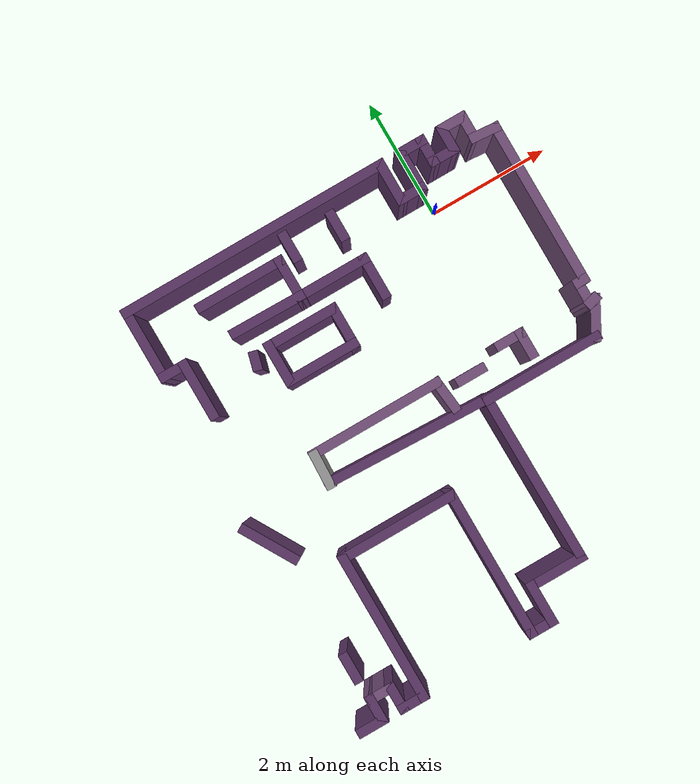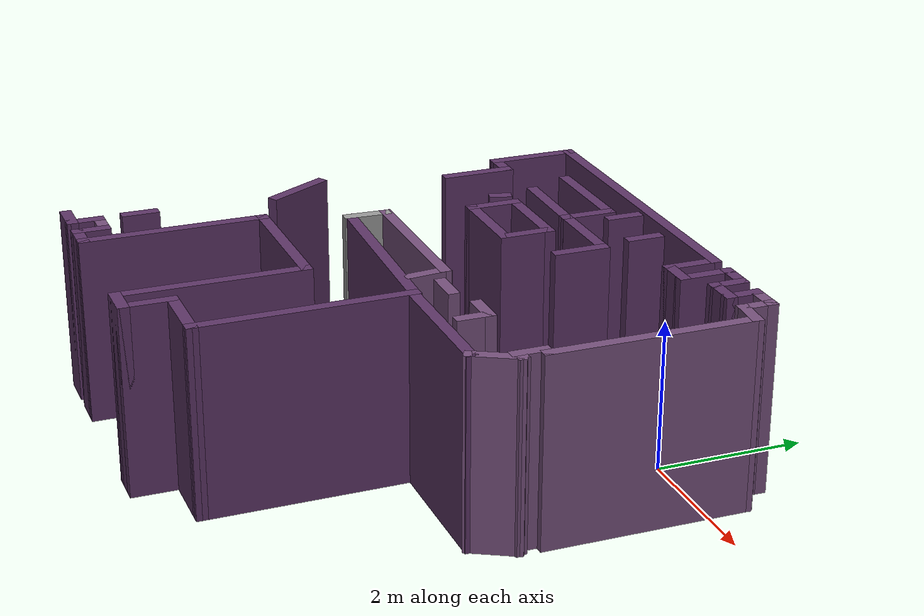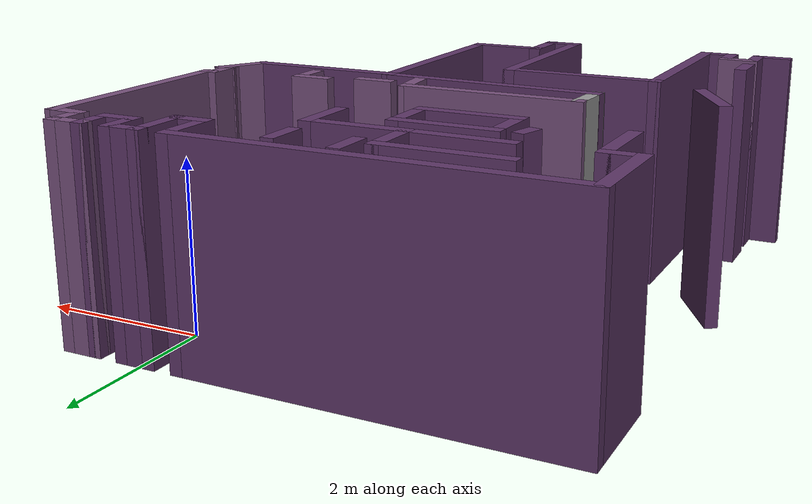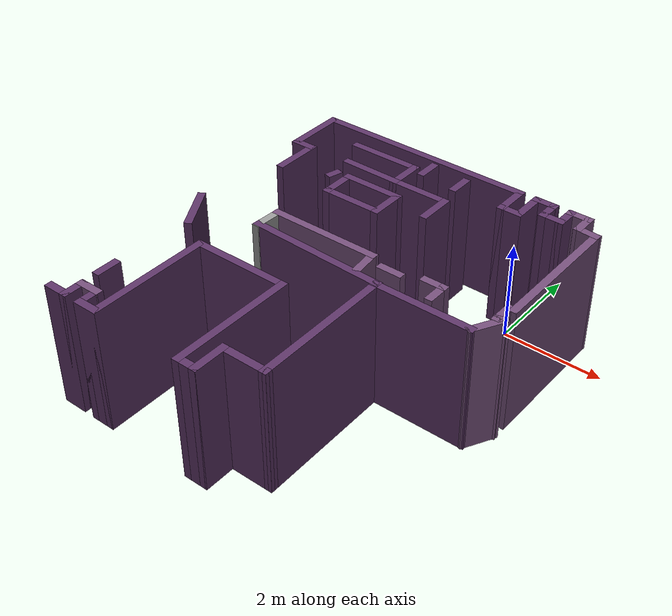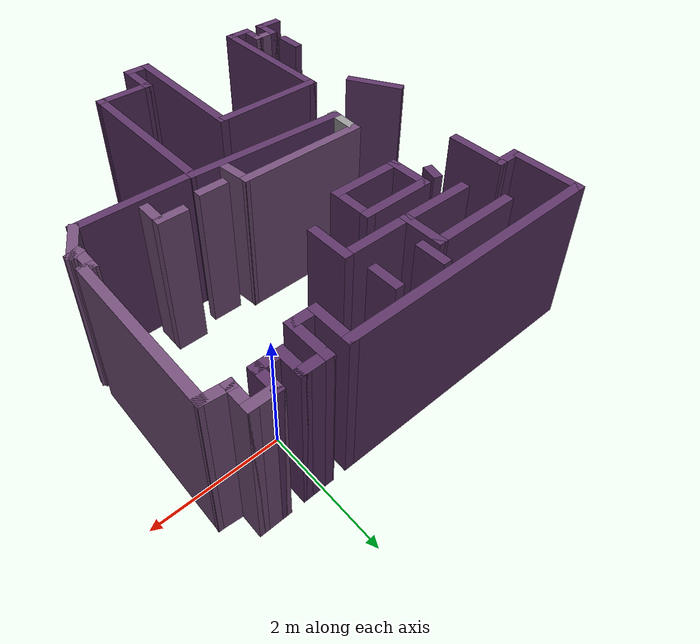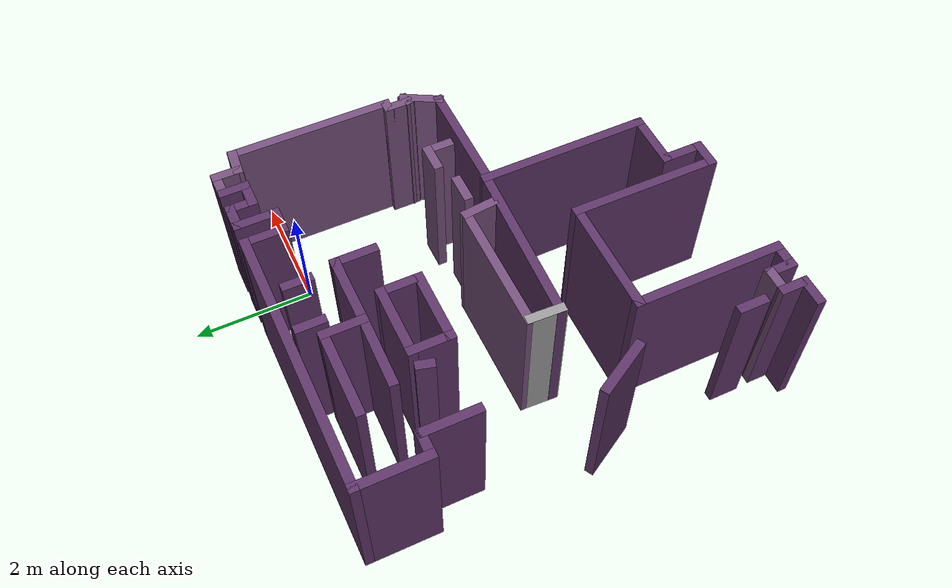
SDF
<sdf version="1.6">
 <model name="map_35">
  <pose>-6.03093 -2.69462 0 0 -0 0</pose>
  <link name="Wall_0">
   <collision name="Wall_0_Collision">
    <geometry><box><size>4.5 0.15 2.5</size></box></geometry>
    <pose>0 0 1.25 0 -0 0</pose>
   </collision>
   <visual name="Wall_0_Visual">
    <pose>0 0 1.25 0 -0 0</pose>
    <geometry><box><size>4.5 0.15 2.5</size></box></geometry>
    <material>
     <script><uri>file://media/materials/scripts/gazebo.material</uri><name>Gazebo/Grey</name></script>
     <ambient>0.360784 0.207843 0.4 1</ambient>
    </material>
    <meta><layer>0</layer></meta>
   </visual>
   <pose>3.38761 3.57249 0 0 -0 3.14159</pose>
  </link>
  <link name="Wall_1">
   <collision name="Wall_1_Collision">
    <geometry><box><size>1.25 0.15 2.5</size></box></geometry>
    <pose>0 0 1.25 0 -0 0</pose>
   </collision>
   <visual name="Wall_1_Visual">
    <pose>0 0 1.25 0 -0 0</pose>
    <geometry><box><size>1.25 0.15 2.5</size></box></geometry>
    <material>
     <script><uri>file://media/materials/scripts/gazebo.material</uri><name>Gazebo/Grey</name></script>
     <ambient>0.360784 0.207843 0.4 1</ambient>
    </material>
    <meta><layer>0</layer></meta>
   </visual>
   <pose>1.21261 3.02249 0 0 -0 -1.5708</pose>
  </link>
  <link name="Wall_103">
   <collision name="Wall_103_Collision">
    <geometry><box><size>2 0.15 2.5</size></box></geometry>
    <pose>0 0 1.25 0 -0 0</pose>
   </collision>
   <visual name="Wall_103_Visual">
    <pose>0 0 1.25 0 -0 0</pose>
    <geometry><box><size>2 0.15 2.5</size></box></geometry>
    <material>
     <script><uri>file://media/materials/scripts/gazebo.material</uri><name>Gazebo/Grey</name></script>
     <ambient>0.360784 0.207843 0.4 1</ambient>
    </material>
    <meta><layer>0</layer></meta>
   </visual>
   <pose>6.1106 -0.231333 0 0 -0 0</pose>
  </link>
  <link name="Wall_104">
   <collision name="Wall_104_Collision">
    <geometry><box><size>0.717797 0.15 2.5</size></box></geometry>
    <pose>0 0 1.25 0 -0 0</pose>
   </collision>
   <visual name="Wall_104_Visual">
    <pose>0 0 1.25 0 -0 0</pose>
    <geometry><box><size>0.717797 0.15 2.5</size></box></geometry>
    <material>
     <script><uri>file://media/materials/scripts/gazebo.material</uri><name>Gazebo/Grey</name></script>
     <ambient>0.458824 0.313726 0.482353 1</ambient>
    </material>
    <meta><layer>0</layer></meta>
   </visual>
   <pose>7.17066 0.018383 0 0 -0 1.07501</pose>
  </link>
  <link name="Wall_105">
   <collision name="Wall_105_Collision">
    <geometry><box><size>0.25 0.15 2.5</size></box></geometry>
    <pose>0 0 1.25 0 -0 0</pose>
   </collision>
   <visual name="Wall_105_Visual">
    <pose>0 0 1.25 0 -0 0</pose>
    <geometry><box><size>0.25 0.15 2.5</size></box></geometry>
    <material>
     <script><uri>file://media/materials/scripts/gazebo.material</uri><name>Gazebo/Grey</name></script>
     <ambient>0.458824 0.313726 0.482353 1</ambient>
    </material>
    <meta><layer>0</layer></meta>
   </visual>
   <pose>7.25742 0.255158 0 0 -0 -2.87979</pose>
  </link>
  <link name="Wall_106">
   <collision name="Wall_106_Collision">
    <geometry><box><size>0.5 0.15 2.5</size></box></geometry>
    <pose>0 0 1.25 0 -0 0</pose>
   </collision>
   <visual name="Wall_106_Visual">
    <pose>0 0 1.25 0 -0 0</pose>
    <geometry><box><size>0.5 0.15 2.5</size></box></geometry>
    <material>
     <script><uri>file://media/materials/scripts/gazebo.material</uri><name>Gazebo/Grey</name></script>
     <ambient>0.458824 0.313726 0.482353 1</ambient>
    </material>
    <meta><layer>0</layer></meta>
   </visual>
   <pose>7.20912 0.417217 0 0 -0 1.5708</pose>
  </link>
  <link name="Wall_107">
   <collision name="Wall_107_Collision">
    <geometry><box><size>0.25 0.15 2.5</size></box></geometry>
    <pose>0 0 1.25 0 -0 0</pose>
   </collision>
   <visual name="Wall_107_Visual">
    <pose>0 0 1.25 0 -0 0</pose>
    <geometry><box><size>0.25 0.15 2.5</size></box></geometry>
    <material>
     <script><uri>file://media/materials/scripts/gazebo.material</uri><name>Gazebo/Grey</name></script>
     <ambient>0.458824 0.313726 0.482353 1</ambient>
    </material>
    <meta><layer>0</layer></meta>
   </visual>
   <pose>7.25912 0.592217 0 0 -0 0</pose>
  </link>
  <link name="Wall_108">
   <collision name="Wall_108_Collision">
    <geometry><box><size>2.75 0.15 2.5</size></box></geometry>
    <pose>0 0 1.25 0 -0 0</pose>
   </collision>
   <visual name="Wall_108_Visual">
    <pose>0 0 1.25 0 -0 0</pose>
    <geometry><box><size>2.75 0.15 2.5</size></box></geometry>
    <material>
     <script><uri>file://media/materials/scripts/gazebo.material</uri><name>Gazebo/Grey</name></script>
     <ambient>0.458824 0.313726 0.482353 1</ambient>
    </material>
    <meta><layer>0</layer></meta>
   </visual>
   <pose>7.30912 1.89222 0 0 -0 1.5708</pose>
  </link>
  <link name="Wall_115">
   <collision name="Wall_115_Collision">
    <geometry><box><size>0.75 0.15 2.5</size></box></geometry>
    <pose>0 0 1.25 0 -0 0</pose>
   </collision>
   <visual name="Wall_115_Visual">
    <pose>0 0 1.25 0 -0 0</pose>
    <geometry><box><size>0.75 0.15 2.5</size></box></geometry>
    <material>
     <script><uri>file://media/materials/scripts/gazebo.material</uri><name>Gazebo/Grey</name></script>
     <ambient>0.360784 0.207843 0.4 1</ambient>
    </material>
    <meta><layer>0</layer></meta>
   </visual>
   <pose>5.56261 3.27249 0 0 -0 -1.5708</pose>
  </link>
  <link name="Wall_116">
   <collision name="Wall_116_Collision">
    <geometry><box><size>0.5 0.15 2.5</size></box></geometry>
    <pose>0 0 1.25 0 -0 0</pose>
   </collision>
   <visual name="Wall_116_Visual">
    <pose>0 0 1.25 0 -0 0</pose>
    <geometry><box><size>0.5 0.15 2.5</size></box></geometry>
    <material>
     <script><uri>file://media/materials/scripts/gazebo.material</uri><name>Gazebo/Grey</name></script>
     <ambient>0.360784 0.207843 0.4 1</ambient>
    </material>
    <meta><layer>0</layer></meta>
   </visual>
   <pose>5.73761 2.97249 0 0 -0 0</pose>
  </link>
  <link name="Wall_119">
   <collision name="Wall_119_Collision">
    <geometry><box><size>0.75 0.15 2.5</size></box></geometry>
    <pose>0 0 1.25 0 -0 0</pose>
   </collision>
   <visual name="Wall_119_Visual">
    <pose>0 0 1.25 0 -0 0</pose>
    <geometry><box><size>0.75 0.15 2.5</size></box></geometry>
    <material>
     <script><uri>file://media/materials/scripts/gazebo.material</uri><name>Gazebo/Grey</name></script>
     <ambient>0.360784 0.207843 0.4 1</ambient>
    </material>
    <meta><layer>0</layer></meta>
   </visual>
   <pose>5.91261 3.27249 0 0 -0 1.5708</pose>
  </link>
  <link name="Wall_120">
   <collision name="Wall_120_Collision">
    <geometry><box><size>0.5 0.15 2.5</size></box></geometry>
    <pose>0 0 1.25 0 -0 0</pose>
   </collision>
   <visual name="Wall_120_Visual">
    <pose>0 0 1.25 0 -0 0</pose>
    <geometry><box><size>0.5 0.15 2.5</size></box></geometry>
    <material>
     <script><uri>file://media/materials/scripts/gazebo.material</uri><name>Gazebo/Grey</name></script>
     <ambient>0.360784 0.207843 0.4 1</ambient>
    </material>
    <meta><layer>0</layer></meta>
   </visual>
   <pose>6.08761 3.57249 0 0 -0 0</pose>
  </link>
  <link name="Wall_121">
   <collision name="Wall_121_Collision">
    <geometry><box><size>0.5 0.15 2.5</size></box></geometry>
    <pose>0 0 1.25 0 -0 0</pose>
   </collision>
   <visual name="Wall_121_Visual">
    <pose>0 0 1.25 0 -0 0</pose>
    <geometry><box><size>0.5 0.15 2.5</size></box></geometry>
    <material>
     <script><uri>file://media/materials/scripts/gazebo.material</uri><name>Gazebo/Grey</name></script>
     <ambient>0.360784 0.207843 0.4 1</ambient>
    </material>
    <meta><layer>0</layer></meta>
   </visual>
   <pose>6.26261 3.39749 0 0 -0 -1.5708</pose>
  </link>
  <link name="Wall_122">
   <collision name="Wall_122_Collision">
    <geometry><box><size>0.5 0.15 2.5</size></box></geometry>
    <pose>0 0 1.25 0 -0 0</pose>
   </collision>
   <visual name="Wall_122_Visual">
    <pose>0 0 1.25 0 -0 0</pose>
    <geometry><box><size>0.5 0.15 2.5</size></box></geometry>
    <material>
     <script><uri>file://media/materials/scripts/gazebo.material</uri><name>Gazebo/Grey</name></script>
     <ambient>0.360784 0.207843 0.4 1</ambient>
    </material>
    <meta><layer>0</layer></meta>
   </visual>
   <pose>6.43761 3.22249 0 0 -0 0</pose>
  </link>
  <link name="Wall_123">
   <collision name="Wall_123_Collision">
    <geometry><box><size>0.5 0.15 2.5</size></box></geometry>
    <pose>0 0 1.25 0 -0 0</pose>
   </collision>
   <visual name="Wall_123_Visual">
    <pose>0 0 1.25 0 -0 0</pose>
    <geometry><box><size>0.5 0.15 2.5</size></box></geometry>
    <material>
     <script><uri>file://media/materials/scripts/gazebo.material</uri><name>Gazebo/Grey</name></script>
     <ambient>0.360784 0.207843 0.4 1</ambient>
    </material>
    <meta><layer>0</layer></meta>
   </visual>
   <pose>6.61261 3.39749 0 0 -0 1.5708</pose>
  </link>
  <link name="Wall_124">
   <collision name="Wall_124_Collision">
    <geometry><box><size>0.5 0.15 2.5</size></box></geometry>
    <pose>0 0 1.25 0 -0 0</pose>
   </collision>
   <visual name="Wall_124_Visual">
    <pose>0 0 1.25 0 -0 0</pose>
    <geometry><box><size>0.5 0.15 2.5</size></box></geometry>
    <material>
     <script><uri>file://media/materials/scripts/gazebo.material</uri><name>Gazebo/Grey</name></script>
     <ambient>0.458824 0.313726 0.482353 1</ambient>
    </material>
    <meta><layer>0</layer></meta>
   </visual>
   <pose>6.78761 3.57249 0 0 -0 0</pose>
  </link>
  <link name="Wall_125">
   <collision name="Wall_125_Collision">
    <geometry><box><size>0.5 0.15 2.5</size></box></geometry>
    <pose>0 0 1.25 0 -0 0</pose>
   </collision>
   <visual name="Wall_125_Visual">
    <pose>0 0 1.25 0 -0 0</pose>
    <geometry><box><size>0.5 0.15 2.5</size></box></geometry>
    <material>
     <script><uri>file://media/materials/scripts/gazebo.material</uri><name>Gazebo/Grey</name></script>
     <ambient>0.458824 0.313726 0.482353 1</ambient>
    </material>
    <meta><layer>0</layer></meta>
   </visual>
   <pose>6.96261 3.39749 0 0 -0 -1.5708</pose>
  </link>
  <link name="Wall_126">
   <collision name="Wall_126_Collision">
    <geometry><box><size>0.497826 0.15 2.5</size></box></geometry>
    <pose>0 0 1.25 0 -0 0</pose>
   </collision>
   <visual name="Wall_126_Visual">
    <pose>0 0 1.25 0 -0 0</pose>
    <geometry><box><size>0.497826 0.15 2.5</size></box></geometry>
    <material>
     <script><uri>file://media/materials/scripts/gazebo.material</uri><name>Gazebo/Grey</name></script>
     <ambient>0.458824 0.313726 0.482353 1</ambient>
    </material>
    <meta><layer>0</layer></meta>
   </visual>
   <pose>7.13587 3.20735 0 0 -0 -0.087136</pose>
  </link>
  <link name="Wall_128">
   <collision name="Wall_128_Collision">
    <geometry><box><size>0.75 0.15 2.5</size></box></geometry>
    <pose>0 0 1.25 0 -0 0</pose>
   </collision>
   <visual name="Wall_128_Visual">
    <pose>0 0 1.25 0 -0 0</pose>
    <geometry><box><size>0.75 0.15 2.5</size></box></geometry>
    <material>
     <script><uri>file://media/materials/scripts/gazebo.material</uri><name>Gazebo/Grey</name></script>
     <ambient>0.360784 0.207843 0.4 1</ambient>
    </material>
    <meta><layer>0</layer></meta>
   </visual>
   <pose>2.78694 1.78408 0 0 -0 -1.5708</pose>
  </link>
  <link name="Wall_129">
   <collision name="Wall_129_Collision">
    <geometry><box><size>1.25 0.15 2.5</size></box></geometry>
    <pose>0 0 1.25 0 -0 0</pose>
   </collision>
   <visual name="Wall_129_Visual">
    <pose>0 0 1.25 0 -0 0</pose>
    <geometry><box><size>1.25 0.15 2.5</size></box></geometry>
    <material>
     <script><uri>file://media/materials/scripts/gazebo.material</uri><name>Gazebo/Grey</name></script>
     <ambient>0.360784 0.207843 0.4 1</ambient>
    </material>
    <meta><layer>0</layer></meta>
   </visual>
   <pose>3.33694 1.48408 0 0 -0 0</pose>
  </link>
  <link name="Wall_130">
   <collision name="Wall_130_Collision">
    <geometry><box><size>0.75 0.15 2.5</size></box></geometry>
    <pose>0 0 1.25 0 -0 0</pose>
   </collision>
   <visual name="Wall_130_Visual">
    <pose>0 0 1.25 0 -0 0</pose>
    <geometry><box><size>0.75 0.15 2.5</size></box></geometry>
    <material>
     <script><uri>file://media/materials/scripts/gazebo.material</uri><name>Gazebo/Grey</name></script>
     <ambient>0.360784 0.207843 0.4 1</ambient>
    </material>
    <meta><layer>0</layer></meta>
   </visual>
   <pose>3.88694 1.78408 0 0 -0 1.5708</pose>
  </link>
  <link name="Wall_131">
   <collision name="Wall_131_Collision">
    <geometry><box><size>1.25 0.15 2.5</size></box></geometry>
    <pose>0 0 1.25 0 -0 0</pose>
   </collision>
   <visual name="Wall_131_Visual">
    <pose>0 0 1.25 0 -0 0</pose>
    <geometry><box><size>1.25 0.15 2.5</size></box></geometry>
    <material>
     <script><uri>file://media/materials/scripts/gazebo.material</uri><name>Gazebo/Grey</name></script>
     <ambient>0.360784 0.207843 0.4 1</ambient>
    </material>
    <meta><layer>0</layer></meta>
   </visual>
   <pose>3.33694 2.08408 0 0 -0 3.14159</pose>
  </link>
  <link name="Wall_133">
   <collision name="Wall_133_Collision">
    <geometry><box><size>0.3 0.15 2.5</size></box></geometry>
    <pose>0 0 1.25 0 -0 0</pose>
   </collision>
   <visual name="Wall_133_Visual">
    <pose>0 0 1.25 0 -0 0</pose>
    <geometry><box><size>0.3 0.15 2.5</size></box></geometry>
    <material>
     <script><uri>file://media/materials/scripts/gazebo.material</uri><name>Gazebo/Grey</name></script>
     <ambient>0.360784 0.207843 0.4 1</ambient>
    </material>
    <meta><layer>0</layer></meta>
   </visual>
   <pose>2.50465 1.99562 0 0 -0 1.309</pose>
  </link>
  <link name="Wall_135">
   <collision name="Wall_135_Collision">
    <geometry><box><size>1.5 0.15 2.5</size></box></geometry>
    <pose>0 0 1.25 0 -0 0</pose>
   </collision>
   <visual name="Wall_135_Visual">
    <pose>0 0 1.25 0 -0 0</pose>
    <geometry><box><size>1.5 0.15 2.5</size></box></geometry>
    <material>
     <script><uri>file://media/materials/scripts/gazebo.material</uri><name>Gazebo/Grey</name></script>
     <ambient>0.360784 0.207843 0.4 1</ambient>
    </material>
    <meta><layer>0</layer></meta>
   </visual>
   <pose>2.87865 3.08976 0 0 -0 0</pose>
  </link>
  <link name="Wall_136">
   <collision name="Wall_136_Collision">
    <geometry><box><size>0.75 0.15 2.5</size></box></geometry>
    <pose>0 0 1.25 0 -0 0</pose>
   </collision>
   <visual name="Wall_136_Visual">
    <pose>0 0 1.25 0 -0 0</pose>
    <geometry><box><size>0.75 0.15 2.5</size></box></geometry>
    <material>
     <script><uri>file://media/materials/scripts/gazebo.material</uri><name>Gazebo/Grey</name></script>
     <ambient>0.360784 0.207843 0.4 1</ambient>
    </material>
    <meta><layer>0</layer></meta>
   </visual>
   <pose>3.55365 2.78976 0 0 -0 -1.5708</pose>
  </link>
  <link name="Wall_137">
   <collision name="Wall_137_Collision">
    <geometry><box><size>1.25 0.15 2.5</size></box></geometry>
    <pose>0 0 1.25 0 -0 0</pose>
   </collision>
   <visual name="Wall_137_Visual">
    <pose>0 0 1.25 0 -0 0</pose>
    <geometry><box><size>1.25 0.15 2.5</size></box></geometry>
    <material>
     <script><uri>file://media/materials/scripts/gazebo.material</uri><name>Gazebo/Grey</name></script>
     <ambient>0.360784 0.207843 0.4 1</ambient>
    </material>
    <meta><layer>0</layer></meta>
   </visual>
   <pose>4.10365 2.48976 0 0 -0 0</pose>
  </link>
  <link name="Wall_138">
   <collision name="Wall_138_Collision">
    <geometry><box><size>0.75 0.15 2.5</size></box></geometry>
    <pose>0 0 1.25 0 -0 0</pose>
   </collision>
   <visual name="Wall_138_Visual">
    <pose>0 0 1.25 0 -0 0</pose>
    <geometry><box><size>0.75 0.15 2.5</size></box></geometry>
    <material>
     <script><uri>file://media/materials/scripts/gazebo.material</uri><name>Gazebo/Grey</name></script>
     <ambient>0.360784 0.207843 0.4 1</ambient>
    </material>
    <meta><layer>0</layer></meta>
   </visual>
   <pose>4.65365 2.18976 0 0 -0 -1.5708</pose>
  </link>
  <link name="Wall_140">
   <collision name="Wall_140_Collision">
    <geometry><box><size>1.25876 0.15 2.5</size></box></geometry>
    <pose>0 0 1.25 0 -0 0</pose>
   </collision>
   <visual name="Wall_140_Visual">
    <pose>0 0 1.25 0 -0 0</pose>
    <geometry><box><size>1.25876 0.15 2.5</size></box></geometry>
    <material>
     <script><uri>file://media/materials/scripts/gazebo.material</uri><name>Gazebo/Grey</name></script>
     <ambient>0.360784 0.207843 0.4 1</ambient>
    </material>
    <meta><layer>0</layer></meta>
   </visual>
   <pose>2.99933 2.49811 0 0 -0 -0.015068</pose>
  </link>
  <link name="Wall_142">
   <collision name="Wall_142_Collision">
    <geometry><box><size>0.5 0.15 2.5</size></box></geometry>
    <pose>0 0 1.25 0 -0 0</pose>
   </collision>
   <visual name="Wall_142_Visual">
    <pose>0 0 1.25 0 -0 0</pose>
    <geometry><box><size>0.5 0.15 2.5</size></box></geometry>
    <material>
     <script><uri>file://media/materials/scripts/gazebo.material</uri><name>Gazebo/Grey</name></script>
     <ambient>0.360784 0.207843 0.4 1</ambient>
    </material>
    <meta><layer>0</layer></meta>
   </visual>
   <pose>3.79262 3.19635 0 0 -0 -1.5708</pose>
  </link>
  <link name="Wall_144">
   <collision name="Wall_144_Collision">
    <geometry><box><size>0.5 0.15 2.5</size></box></geometry>
    <pose>0 0 1.25 0 -0 0</pose>
   </collision>
   <visual name="Wall_144_Visual">
    <pose>0 0 1.25 0 -0 0</pose>
    <geometry><box><size>0.5 0.15 2.5</size></box></geometry>
    <material>
     <script><uri>file://media/materials/scripts/gazebo.material</uri><name>Gazebo/Grey</name></script>
     <ambient>0.360784 0.207843 0.4 1</ambient>
    </material>
    <meta><layer>0</layer></meta>
   </visual>
   <pose>4.55693 3.1159 0 0 -0 -1.5708</pose>
  </link>
  <link name="Wall_146">
   <collision name="Wall_146_Collision">
    <geometry><box><size>0.5 0.15 2.5</size></box></geometry>
    <pose>0 0 1.25 0 -0 0</pose>
   </collision>
   <visual name="Wall_146_Visual">
    <pose>0 0 1.25 0 -0 0</pose>
    <geometry><box><size>0.5 0.15 2.5</size></box></geometry>
    <material>
     <script><uri>file://media/materials/scripts/gazebo.material</uri><name>Gazebo/Grey</name></script>
     <ambient>0.458824 0.313726 0.482353 1</ambient>
    </material>
    <meta><layer>0</layer></meta>
   </visual>
   <pose>5.15432 0.213521 0 0 -0 0</pose>
  </link>
  <link name="Wall_150">
   <collision name="Wall_150_Collision">
    <geometry><box><size>0.5 0.15 2.5</size></box></geometry>
    <pose>0 0 1.25 0 -0 0</pose>
   </collision>
   <visual name="Wall_150_Visual">
    <pose>0 0 1.25 0 -0 0</pose>
    <geometry><box><size>0.5 0.15 2.5</size></box></geometry>
    <material>
     <script><uri>file://media/materials/scripts/gazebo.material</uri><name>Gazebo/Grey</name></script>
     <ambient>0.458824 0.313726 0.482353 1</ambient>
    </material>
    <meta><layer>0</layer></meta>
   </visual>
   <pose>5.91864 0.37443 0 0 -0 0</pose>
  </link>
  <link name="Wall_151">
   <collision name="Wall_151_Collision">
    <geometry><box><size>0.5 0.15 2.5</size></box></geometry>
    <pose>0 0 1.25 0 -0 0</pose>
   </collision>
   <visual name="Wall_151_Visual">
    <pose>0 0 1.25 0 -0 0</pose>
    <geometry><box><size>0.5 0.15 2.5</size></box></geometry>
    <material>
     <script><uri>file://media/materials/scripts/gazebo.material</uri><name>Gazebo/Grey</name></script>
     <ambient>0.458824 0.313726 0.482353 1</ambient>
    </material>
    <meta><layer>0</layer></meta>
   </visual>
   <pose>6.09363 0.199429 0 0 -0 -1.5708</pose>
  </link>
  <link name="Wall_153">
   <collision name="Wall_153_Collision">
    <geometry><box><size>0.5 0.15 2.5</size></box></geometry>
    <pose>0 0 1.25 0 -0 0</pose>
   </collision>
   <visual name="Wall_153_Visual">
    <pose>0 0 1.25 0 -0 0</pose>
    <geometry><box><size>0.5 0.15 2.5</size></box></geometry>
    <material>
     <script><uri>file://media/materials/scripts/gazebo.material</uri><name>Gazebo/Grey</name></script>
     <ambient>0.360784 0.207843 0.4 1</ambient>
    </material>
    <meta><layer>0</layer></meta>
   </visual>
   <pose>1.43933 -2.63658 0 0 -0 -1.5708</pose>
  </link>
  <link name="Wall_4">
   <collision name="Wall_4_Collision">
    <geometry><box><size>0.5 0.15 2.5</size></box></geometry>
    <pose>0 0 1.25 0 -0 0</pose>
   </collision>
   <visual name="Wall_4_Visual">
    <pose>0 0 1.25 0 -0 0</pose>
    <geometry><box><size>0.5 0.15 2.5</size></box></geometry>
    <material>
     <script><uri>file://media/materials/scripts/gazebo.material</uri><name>Gazebo/Grey</name></script>
     <ambient>0.360784 0.207843 0.4 1</ambient>
    </material>
    <meta><layer>0</layer></meta>
   </visual>
   <pose>1.38761 2.47249 0 0 -0 0</pose>
  </link>
  <link name="Wall_5">
   <collision name="Wall_5_Collision">
    <geometry><box><size>1 0.15 2.5</size></box></geometry>
    <pose>0 0 1.25 0 -0 0</pose>
   </collision>
   <visual name="Wall_5_Visual">
    <pose>0 0 1.25 0 -0 0</pose>
    <geometry><box><size>1 0.15 2.5</size></box></geometry>
    <material>
     <script><uri>file://media/materials/scripts/gazebo.material</uri><name>Gazebo/Grey</name></script>
     <ambient>0.360784 0.207843 0.4 1</ambient>
    </material>
    <meta><layer>0</layer></meta>
   </visual>
   <pose>1.56261 2.04749 0 0 -0 -1.5708</pose>
  </link>
  <link name="Wall_75">
   <collision name="Wall_75_Collision">
    <geometry><box><size>1 0.15 2.5</size></box></geometry>
    <pose>0 0 1.25 0 -0 0</pose>
   </collision>
   <visual name="Wall_75_Visual">
    <pose>0 0 1.25 0 -0 0</pose>
    <geometry><box><size>1 0.15 2.5</size></box></geometry>
    <material>
     <script><uri>file://media/materials/scripts/gazebo.material</uri><name>Gazebo/Grey</name></script>
     <ambient>0.360784 0.207843 0.4 1</ambient>
    </material>
    <meta><layer>0</layer></meta>
   </visual>
   <pose>1.31821 -0.449962 0 0 -0 -1.0472</pose>
  </link>
  <link name="Wall_79">
   <collision name="Wall_79_Collision">
    <geometry><box><size>0.5 0.15 2.5</size></box></geometry>
    <pose>0 0 1.25 0 -0 0</pose>
   </collision>
   <visual name="Wall_79_Visual">
    <pose>0 0 1.25 0 -0 0</pose>
    <geometry><box><size>0.5 0.15 2.5</size></box></geometry>
    <material>
     <script><uri>file://media/materials/scripts/gazebo.material</uri><name>Gazebo/Grey</name></script>
     <ambient>0.360784 0.207843 0.4 1</ambient>
    </material>
    <meta><layer>0</layer></meta>
   </visual>
   <pose>1.28071 -3.5319 0 0 -0 0</pose>
  </link>
  <link name="Wall_80">
   <collision name="Wall_80_Collision">
    <geometry><box><size>0.5 0.15 2.5</size></box></geometry>
    <pose>0 0 1.25 0 -0 0</pose>
   </collision>
   <visual name="Wall_80_Visual">
    <pose>0 0 1.25 0 -0 0</pose>
    <geometry><box><size>0.5 0.15 2.5</size></box></geometry>
    <material>
     <script><uri>file://media/materials/scripts/gazebo.material</uri><name>Gazebo/Grey</name></script>
     <ambient>0.360784 0.207843 0.4 1</ambient>
    </material>
    <meta><layer>0</layer></meta>
   </visual>
   <pose>1.45571 -3.3569 0 0 -0 1.5708</pose>
  </link>
  <link name="Wall_81">
   <collision name="Wall_81_Collision">
    <geometry><box><size>0.5 0.15 2.5</size></box></geometry>
    <pose>0 0 1.25 0 -0 0</pose>
   </collision>
   <visual name="Wall_81_Visual">
    <pose>0 0 1.25 0 -0 0</pose>
    <geometry><box><size>0.5 0.15 2.5</size></box></geometry>
    <material>
     <script><uri>file://media/materials/scripts/gazebo.material</uri><name>Gazebo/Grey</name></script>
     <ambient>0.458824 0.313726 0.482353 1</ambient>
    </material>
    <meta><layer>0</layer></meta>
   </visual>
   <pose>1.63071 -3.1819 0 0 -0 0</pose>
  </link>
  <link name="Wall_82">
   <collision name="Wall_82_Collision">
    <geometry><box><size>0.5 0.15 2.5</size></box></geometry>
    <pose>0 0 1.25 0 -0 0</pose>
   </collision>
   <visual name="Wall_82_Visual">
    <pose>0 0 1.25 0 -0 0</pose>
    <geometry><box><size>0.5 0.15 2.5</size></box></geometry>
    <material>
     <script><uri>file://media/materials/scripts/gazebo.material</uri><name>Gazebo/Grey</name></script>
     <ambient>0.360784 0.207843 0.4 1</ambient>
    </material>
    <meta><layer>0</layer></meta>
   </visual>
   <pose>1.80571 -3.3569 0 0 -0 -1.5708</pose>
  </link>
  <link name="Wall_83">
   <collision name="Wall_83_Collision">
    <geometry><box><size>0.5 0.15 2.5</size></box></geometry>
    <pose>0 0 1.25 0 -0 0</pose>
   </collision>
   <visual name="Wall_83_Visual">
    <pose>0 0 1.25 0 -0 0</pose>
    <geometry><box><size>0.5 0.15 2.5</size></box></geometry>
    <material>
     <script><uri>file://media/materials/scripts/gazebo.material</uri><name>Gazebo/Grey</name></script>
     <ambient>0.360784 0.207843 0.4 1</ambient>
    </material>
    <meta><layer>0</layer></meta>
   </visual>
   <pose>1.98071 -3.5319 0 0 -0 0</pose>
  </link>
  <link name="Wall_84">
   <collision name="Wall_84_Collision">
    <geometry><box><size>2.5 0.15 2.5</size></box></geometry>
    <pose>0 0 1.25 0 -0 0</pose>
   </collision>
   <visual name="Wall_84_Visual">
    <pose>0 0 1.25 0 -0 0</pose>
    <geometry><box><size>2.5 0.15 2.5</size></box></geometry>
    <material>
     <script><uri>file://media/materials/scripts/gazebo.material</uri><name>Gazebo/Grey</name></script>
     <ambient>0.360784 0.207843 0.4 1</ambient>
    </material>
    <meta><layer>0</layer></meta>
   </visual>
   <pose>2.15571 -2.3569 0 0 -0 1.5708</pose>
  </link>
  <link name="Wall_85">
   <collision name="Wall_85_Collision">
    <geometry><box><size>2 0.15 2.5</size></box></geometry>
    <pose>0 0 1.25 0 -0 0</pose>
   </collision>
   <visual name="Wall_85_Visual">
    <pose>0 0 1.25 0 -0 0</pose>
    <geometry><box><size>2 0.15 2.5</size></box></geometry>
    <material>
     <script><uri>file://media/materials/scripts/gazebo.material</uri><name>Gazebo/Grey</name></script>
     <ambient>0.360784 0.207843 0.4 1</ambient>
    </material>
    <meta><layer>0</layer></meta>
   </visual>
   <pose>3.08071 -1.1819 0 0 -0 0</pose>
  </link>
  <link name="Wall_86">
   <collision name="Wall_86_Collision">
    <geometry><box><size>2.5 0.15 2.5</size></box></geometry>
    <pose>0 0 1.25 0 -0 0</pose>
   </collision>
   <visual name="Wall_86_Visual">
    <pose>0 0 1.25 0 -0 0</pose>
    <geometry><box><size>2.5 0.15 2.5</size></box></geometry>
    <material>
     <script><uri>file://media/materials/scripts/gazebo.material</uri><name>Gazebo/Grey</name></script>
     <ambient>0.360784 0.207843 0.4 1</ambient>
    </material>
    <meta><layer>0</layer></meta>
   </visual>
   <pose>4.00571 -2.3569 0 0 -0 -1.5708</pose>
  </link>
  <link name="Wall_87">
   <collision name="Wall_87_Collision">
    <geometry><box><size>0.5 0.15 2.5</size></box></geometry>
    <pose>0 0 1.25 0 -0 0</pose>
   </collision>
   <visual name="Wall_87_Visual">
    <pose>0 0 1.25 0 -0 0</pose>
    <geometry><box><size>0.5 0.15 2.5</size></box></geometry>
    <material>
     <script><uri>file://media/materials/scripts/gazebo.material</uri><name>Gazebo/Grey</name></script>
     <ambient>0.360784 0.207843 0.4 1</ambient>
    </material>
    <meta><layer>0</layer></meta>
   </visual>
   <pose>4.18071 -3.5319 0 0 -0 0</pose>
  </link>
  <link name="Wall_88">
   <collision name="Wall_88_Collision">
    <geometry><box><size>0.75 0.15 2.5</size></box></geometry>
    <pose>0 0 1.25 0 -0 0</pose>
   </collision>
   <visual name="Wall_88_Visual">
    <pose>0 0 1.25 0 -0 0</pose>
    <geometry><box><size>0.75 0.15 2.5</size></box></geometry>
    <material>
     <script><uri>file://media/materials/scripts/gazebo.material</uri><name>Gazebo/Grey</name></script>
     <ambient>0.360784 0.207843 0.4 1</ambient>
    </material>
    <meta><layer>0</layer></meta>
   </visual>
   <pose>4.35571 -3.2319 0 0 -0 1.5708</pose>
  </link>
  <link name="Wall_89">
   <collision name="Wall_89_Collision">
    <geometry><box><size>1 0.15 2.5</size></box></geometry>
    <pose>0 0 1.25 0 -0 0</pose>
   </collision>
   <visual name="Wall_89_Visual">
    <pose>0 0 1.25 0 -0 0</pose>
    <geometry><box><size>1 0.15 2.5</size></box></geometry>
    <material>
     <script><uri>file://media/materials/scripts/gazebo.material</uri><name>Gazebo/Grey</name></script>
     <ambient>0.360784 0.207843 0.4 1</ambient>
    </material>
    <meta><layer>0</layer></meta>
   </visual>
   <pose>4.78071 -2.9319 0 0 -0 0</pose>
  </link>
  <link name="Wall_90">
   <collision name="Wall_90_Collision">
    <geometry><box><size>2.87076 0.15 2.5</size></box></geometry>
    <pose>0 0 1.25 0 -0 0</pose>
   </collision>
   <visual name="Wall_90_Visual">
    <pose>0 0 1.25 0 -0 0</pose>
    <geometry><box><size>2.87076 0.15 2.5</size></box></geometry>
    <material>
     <script><uri>file://media/materials/scripts/gazebo.material</uri><name>Gazebo/Grey</name></script>
     <ambient>0.360784 0.207843 0.4 1</ambient>
    </material>
    <meta><layer>0</layer></meta>
   </visual>
   <pose>5.19566 -1.57156 0 0 -0 1.57819</pose>
  </link>
  <link name="Wall_92">
   <collision name="Wall_92_Collision">
    <geometry><box><size>2.80161 0.15 2.5</size></box></geometry>
    <pose>0 0 1.25 0 -0 0</pose>
   </collision>
   <visual name="Wall_92_Visual">
    <pose>0 0 1.25 0 -0 0</pose>
    <geometry><box><size>2.80161 0.15 2.5</size></box></geometry>
    <material>
     <script><uri>file://media/materials/scripts/gazebo.material</uri><name>Gazebo/Grey</name></script>
     <ambient>0.360784 0.207843 0.4 1</ambient>
    </material>
    <meta><layer>0</layer></meta>
   </visual>
   <pose>3.86117 -0.160935 0 0 -0 3.10364</pose>
  </link>
  <link name="Wall_93">
   <collision name="Wall_93_Collision">
    <geometry><box><size>0.62974 0.15 2.5</size></box></geometry>
    <pose>0 0 1.25 0 -0 0</pose>
   </collision>
   <visual name="Wall_93_Visual">
    <pose>0 0 1.25 0 -0 0</pose>
    <geometry><box><size>0.62974 0.15 2.5</size></box></geometry>
    <material>
     <script><uri>file://media/materials/scripts/gazebo.material</uri><name>Gazebo/Grey</name></script>
     <ambient>1 1 1 1</ambient>
    </material>
    <meta><layer>0</layer></meta>
   </visual>
   <pose>2.54679 0.108894 0 0 -0 1.52886</pose>
  </link>
  <link name="Wall_94">
   <collision name="Wall_94_Collision">
    <geometry><box><size>2.25 0.15 2.5</size></box></geometry>
    <pose>0 0 1.25 0 -0 0</pose>
   </collision>
   <visual name="Wall_94_Visual">
    <pose>0 0 1.25 0 -0 0</pose>
    <geometry><box><size>2.25 0.15 2.5</size></box></geometry>
    <material>
     <script><uri>file://media/materials/scripts/gazebo.material</uri><name>Gazebo/Grey</name></script>
     <ambient>0.458824 0.313726 0.482353 1</ambient>
    </material>
    <meta><layer>0</layer></meta>
   </visual>
   <pose>3.60685 0.368667 0 0 -0 0</pose>
  </link>
  <link name="Wall_95">
   <collision name="Wall_95_Collision">
    <geometry><box><size>0.60321 0.15 2.5</size></box></geometry>
    <pose>0 0 1.25 0 -0 0</pose>
   </collision>
   <visual name="Wall_95_Visual">
    <pose>0 0 1.25 0 -0 0</pose>
    <geometry><box><size>0.60321 0.15 2.5</size></box></geometry>
    <material>
     <script><uri>file://media/materials/scripts/gazebo.material</uri><name>Gazebo/Grey</name></script>
     <ambient>0.458824 0.313726 0.482353 1</ambient>
    </material>
    <meta><layer>0</layer></meta>
   </visual>
   <pose>4.68128 0.143383 0 0 -0 -1.46277</pose>
  </link>
  <static>1</static>
 </model>
</sdf>
